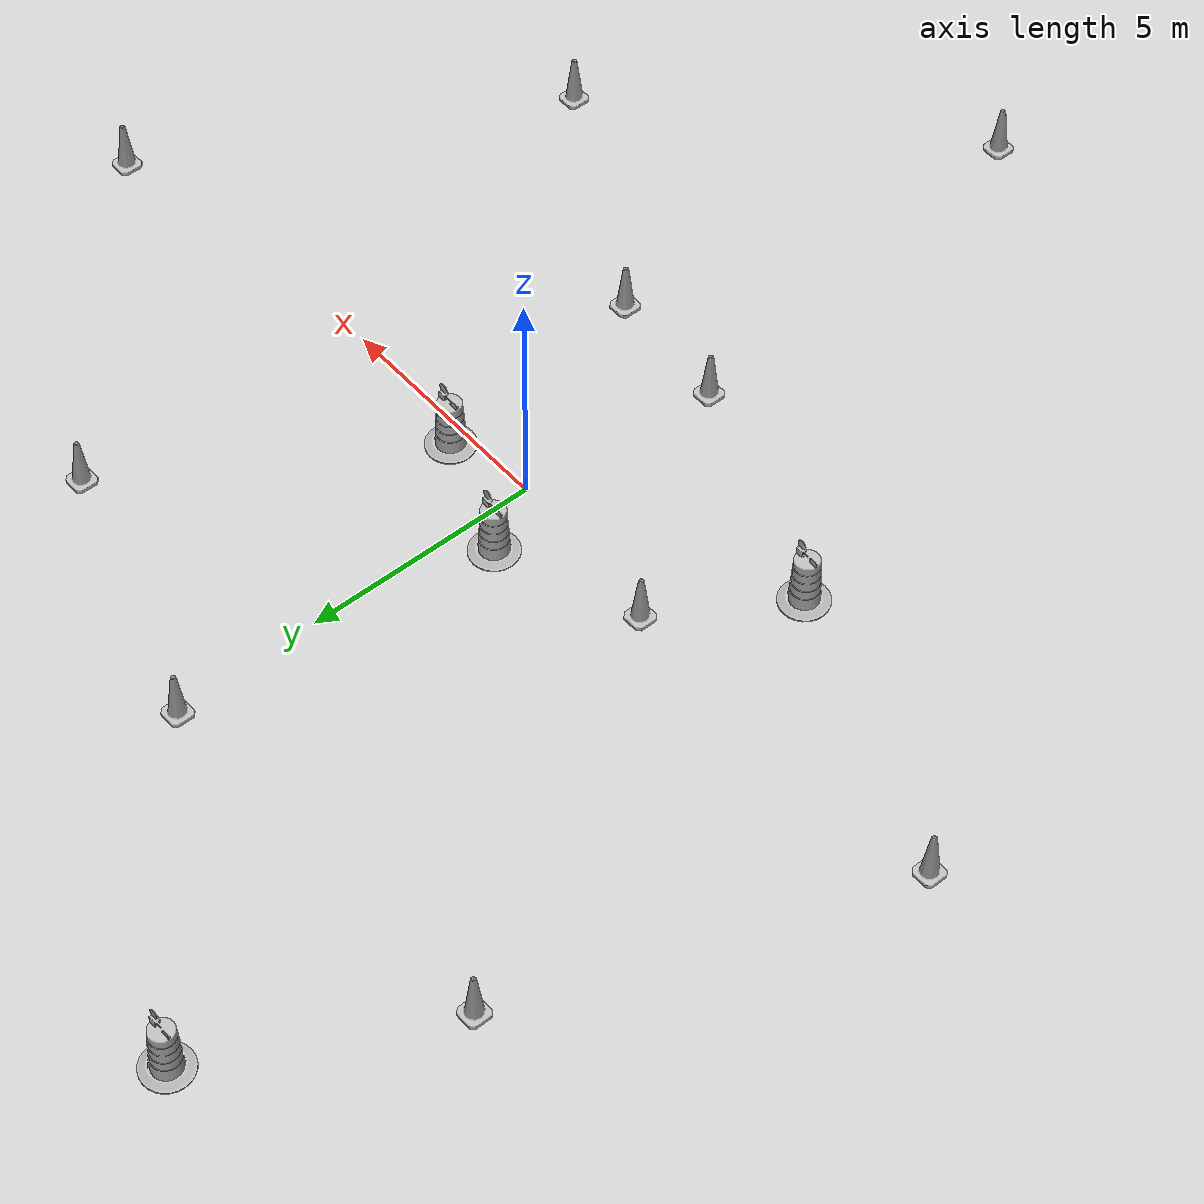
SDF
<sdf version="1.7">
 <world name="default">
  <light name="sun" type="directional">
   <pose>0 0 10 0 -0 0</pose>
   <diffuse>0.8 0.8 0.8 1</diffuse>
   <specular>0.2 0.2 0.2 1</specular>
   <attenuation>
    <range>1000</range>
    <constant>0.9</constant>
    <linear>0.01</linear>
    <quadratic>0.001</quadratic>
   </attenuation>
   <direction>-0.5 0.1 -0.9</direction>
   <spot><inner_angle>0</inner_angle><outer_angle>0</outer_angle><falloff>0</falloff></spot>
  </light>
  <model name="ground_plane">
   <static>1</static>
   <link name="link">
    <collision name="collision">
     <geometry><plane><normal>0 0 1</normal><size>100 100</size></plane></geometry>
     <surface>
      <contact><collide_bitmask>65535</collide_bitmask></contact>
      <friction><ode><mu>100</mu><mu2>50</mu2></ode></friction>
     </surface>
    </collision>
    <visual name="visual">
     <cast_shadows>0</cast_shadows>
     <geometry><plane><normal>0 0 1</normal><size>100 100</size></plane></geometry>
     <material>
      <script><uri>file://media/materials/scripts/gazebo.material</uri><name>Gazebo/Grey</name></script>
     </material>
    </visual>
   </link>
  </model>
  <gravity>0 0 -9.8</gravity>
  <magnetic_field>6e-06 2.3e-05 -4.2e-05</magnetic_field>
  <atmosphere type="adiabatic"/>
  <physics type="ode">
   <max_step_size>0.001</max_step_size>
   <real_time_factor>1</real_time_factor>
   <real_time_update_rate>1000</real_time_update_rate>
  </physics>
  <scene><ambient>0.4 0.4 0.4 1</ambient><background>0.7 0.7 0.7 1</background><shadows>1</shadows></scene>
  <spherical_coordinates>
   <surface_model>EARTH_WGS84</surface_model>
   <latitude_deg>0</latitude_deg>
   <longitude_deg>0</longitude_deg>
   <elevation>0</elevation>
   <heading_deg>0</heading_deg>
  </spherical_coordinates>
  <model name="Construction Barrel">
   <link name="link">
    <inertial>
     <pose>0 0 0.4 0 -0 0</pose>
     <mass>500</mass>
     <inertia><ixx>51.2096</ixx><iyy>51.2096</iyy><izz>25</izz><ixy>0</ixy><ixz>0</ixz><iyz>0</iyz></inertia>
    </inertial>
    <collision name="collision">
     <geometry><mesh><uri>model://construction_barrel/meshes/construction_barrel.dae</uri></mesh></geometry>
    </collision>
    <visual name="visual">
     <geometry><mesh><uri>model://construction_barrel/meshes/construction_barrel.dae</uri></mesh></geometry>
    </visual>
   </link>
   <pose>-0.756326 1.39222 -1e-06 -3e-06 -1e-06 -3.2e-05</pose>
  </model>
  <model name="Construction Barrel_0">
   <link name="link">
    <inertial>
     <pose>0 0 0.4 0 -0 0</pose>
     <mass>500</mass>
     <inertia><ixx>51.2096</ixx><iyy>51.2096</iyy><izz>25</izz><ixy>0</ixy><ixz>0</ixz><iyz>0</iyz></inertia>
    </inertial>
    <collision name="collision">
     <geometry><mesh><uri>model://construction_barrel/meshes/construction_barrel.dae</uri></mesh></geometry>
    </collision>
    <visual name="visual">
     <geometry><mesh><uri>model://construction_barrel/meshes/construction_barrel.dae</uri></mesh></geometry>
    </visual>
   </link>
   <pose>1.80011 0.37713 -1e-06 2e-06 -1e-06 -3.4e-05</pose>
  </model>
  <model name="Construction Cone">
   <link name="link">
    <collision name="collision">
     <geometry>
      <mesh><scale>10 10 10</scale><uri>model://construction_cone/meshes/construction_cone.dae</uri></mesh>
     </geometry>
    </collision>
    <visual name="visual">
     <geometry>
      <mesh><scale>10 10 10</scale><uri>model://construction_cone/meshes/construction_cone.dae</uri></mesh>
     </geometry>
    </visual>
    <inertial>
     <inertia><ixx>1</ixx><ixy>0</ixy><ixz>0</ixz><iyy>1</iyy><iyz>0</iyz><izz>1</izz></inertia>
     <mass>1</mass>
    </inertial>
   </link>
   <pose>5.53728 6.30258 -0 0 -0 0</pose>
  </model>
  <model name="Construction Cone_0">
   <link name="link">
    <collision name="collision">
     <geometry>
      <mesh><scale>10 10 10</scale><uri>model://construction_cone/meshes/construction_cone.dae</uri></mesh>
     </geometry>
    </collision>
    <visual name="visual">
     <geometry>
      <mesh><scale>10 10 10</scale><uri>model://construction_cone/meshes/construction_cone.dae</uri></mesh>
     </geometry>
    </visual>
    <inertial>
     <inertia><ixx>1</ixx><ixy>0</ixy><ixz>0</ixz><iyy>1</iyy><iyz>0</iyz><izz>1</izz></inertia>
     <mass>1</mass>
    </inertial>
   </link>
   <pose>0.849267 -13.2356 -0 0 -0 0</pose>
  </model>
  <model name="Construction Cone_1">
   <link name="link">
    <collision name="collision">
     <geometry>
      <mesh><scale>10 10 10</scale><uri>model://construction_cone/meshes/construction_cone.dae</uri></mesh>
     </geometry>
    </collision>
    <visual name="visual">
     <geometry>
      <mesh><scale>10 10 10</scale><uri>model://construction_cone/meshes/construction_cone.dae</uri></mesh>
     </geometry>
    </visual>
    <inertial>
     <inertia><ixx>1</ixx><ixy>0</ixy><ixz>0</ixz><iyy>1</iyy><iyz>0</iyz><izz>1</izz></inertia>
     <mass>1</mass>
    </inertial>
   </link>
   <pose>7.5516 -7.51039 -0 0 -0 0</pose>
  </model>
  <model name="Construction Cone_2">
   <link name="link">
    <collision name="collision">
     <geometry>
      <mesh><scale>10 10 10</scale><uri>model://construction_cone/meshes/construction_cone.dae</uri></mesh>
     </geometry>
    </collision>
    <visual name="visual">
     <geometry>
      <mesh><scale>10 10 10</scale><uri>model://construction_cone/meshes/construction_cone.dae</uri></mesh>
     </geometry>
    </visual>
    <inertial>
     <inertia><ixx>1</ixx><ixy>0</ixy><ixz>0</ixz><iyy>1</iyy><iyz>0</iyz><izz>1</izz></inertia>
     <mass>1</mass>
    </inertial>
   </link>
   <pose>-0.056667 8.12199 -0 0 -0 0</pose>
  </model>
  <model name="Construction Cone_3">
   <link name="link">
    <collision name="collision">
     <geometry>
      <mesh><scale>10 10 10</scale><uri>model://construction_cone/meshes/construction_cone.dae</uri></mesh>
     </geometry>
    </collision>
    <visual name="visual">
     <geometry>
      <mesh><scale>10 10 10</scale><uri>model://construction_cone/meshes/construction_cone.dae</uri></mesh>
     </geometry>
    </visual>
    <inertial>
     <inertia><ixx>1</ixx><ixy>0</ixy><ixz>0</ixz><iyy>1</iyy><iyz>0</iyz><izz>1</izz></inertia>
     <mass>1</mass>
    </inertial>
   </link>
   <pose>-3.69879 0.345038 -8e-06 0 1e-06 0</pose>
  </model>
  <model name="Construction Cone_4">
   <link name="link">
    <collision name="collision">
     <geometry>
      <mesh><scale>10 10 10</scale><uri>model://construction_cone/meshes/construction_cone.dae</uri></mesh>
     </geometry>
    </collision>
    <visual name="visual">
     <geometry>
      <mesh><scale>10 10 10</scale><uri>model://construction_cone/meshes/construction_cone.dae</uri></mesh>
     </geometry>
    </visual>
    <inertial>
     <inertia><ixx>1</ixx><ixy>0</ixy><ixz>0</ixz><iyy>1</iyy><iyz>0</iyz><izz>1</izz></inertia>
     <mass>1</mass>
    </inertial>
   </link>
   <pose>-0.406438 -4.23374 -1e-06 2e-06 2e-06 0</pose>
  </model>
  <model name="Construction Cone_5">
   <link name="link">
    <collision name="collision">
     <geometry>
      <mesh><scale>10 10 10</scale><uri>model://construction_cone/meshes/construction_cone.dae</uri></mesh>
     </geometry>
    </collision>
    <visual name="visual">
     <geometry>
      <mesh><scale>10 10 10</scale><uri>model://construction_cone/meshes/construction_cone.dae</uri></mesh>
     </geometry>
    </visual>
    <inertial>
     <inertia><ixx>1</ixx><ixy>0</ixy><ixz>0</ixz><iyy>1</iyy><iyz>0</iyz><izz>1</izz></inertia>
     <mass>1</mass>
    </inertial>
   </link>
   <pose>-11.1544 0.164254 -0 0 -0 0</pose>
  </model>
  <model name="Construction Cone_6">
   <link name="link">
    <collision name="collision">
     <geometry>
      <mesh><scale>10 10 10</scale><uri>model://construction_cone/meshes/construction_cone.dae</uri></mesh>
     </geometry>
    </collision>
    <visual name="visual">
     <geometry>
      <mesh><scale>10 10 10</scale><uri>model://construction_cone/meshes/construction_cone.dae</uri></mesh>
     </geometry>
    </visual>
    <inertial>
     <inertia><ixx>1</ixx><ixy>0</ixy><ixz>0</ixz><iyy>1</iyy><iyz>0</iyz><izz>1</izz></inertia>
     <mass>1</mass>
    </inertial>
   </link>
   <pose>2.39316 -4.49605 -0 0 -0 0</pose>
  </model>
  <model name="Construction Cone_7">
   <link name="link">
    <collision name="collision">
     <geometry>
      <mesh><scale>10 10 10</scale><uri>model://construction_cone/meshes/construction_cone.dae</uri></mesh>
     </geometry>
    </collision>
    <visual name="visual">
     <geometry>
      <mesh><scale>10 10 10</scale><uri>model://construction_cone/meshes/construction_cone.dae</uri></mesh>
     </geometry>
    </visual>
    <inertial>
     <inertia><ixx>1</ixx><ixy>0</ixy><ixz>0</ixz><iyy>1</iyy><iyz>0</iyz><izz>1</izz></inertia>
     <mass>1</mass>
    </inertial>
   </link>
   <pose>11.9099 0.739723 -0 0 -0 0</pose>
  </model>
  <model name="Construction Cone_8">
   <link name="link">
    <collision name="collision">
     <geometry>
      <mesh><scale>10 10 10</scale><uri>model://construction_cone/meshes/construction_cone.dae</uri></mesh>
     </geometry>
    </collision>
    <visual name="visual">
     <geometry>
      <mesh><scale>10 10 10</scale><uri>model://construction_cone/meshes/construction_cone.dae</uri></mesh>
     </geometry>
    </visual>
    <inertial>
     <inertia><ixx>1</ixx><ixy>0</ixy><ixz>0</ixz><iyy>1</iyy><iyz>0</iyz><izz>1</izz></inertia>
     <mass>1</mass>
    </inertial>
   </link>
   <pose>-8.3143 7.97215 -0 0 -0 0</pose>
  </model>
  <model name="Construction Barrel_1">
   <link name="link">
    <inertial>
     <pose>0 0 0.4 0 -0 0</pose>
     <mass>500</mass>
     <inertia><ixx>51.2096</ixx><iyy>51.2096</iyy><izz>25</izz><ixy>0</ixy><ixz>0</ixz><iyz>0</iyz></inertia>
    </inertial>
    <collision name="collision">
     <geometry><mesh><uri>model://construction_barrel/meshes/construction_barrel.dae</uri></mesh></geometry>
    </collision>
    <visual name="visual">
     <geometry><mesh><uri>model://construction_barrel/meshes/construction_barrel.dae</uri></mesh></geometry>
    </visual>
   </link>
   <pose>-5.31087 -2.23711 -3e-06 -4e-06 -4e-06 -2.2e-05</pose>
  </model>
  <model name="Construction Barrel_2">
   <link name="link">
    <inertial>
     <pose>0 0 0.4 0 -0 0</pose>
     <mass>500</mass>
     <inertia><ixx>51.2096</ixx><iyy>51.2096</iyy><izz>25</izz><ixy>0</ixy><ixz>0</ixz><iyz>0</iyz></inertia>
    </inertial>
    <collision name="collision">
     <geometry><mesh><uri>model://construction_barrel/meshes/construction_barrel.dae</uri></mesh></geometry>
    </collision>
    <visual name="visual">
     <geometry><mesh><uri>model://construction_barrel/meshes/construction_barrel.dae</uri></mesh></geometry>
    </visual>
   </link>
   <pose>-5.85558 12.5341 1e-06 2e-06 3e-06 -1.7e-05</pose>
  </model>
 </world>
</sdf>
